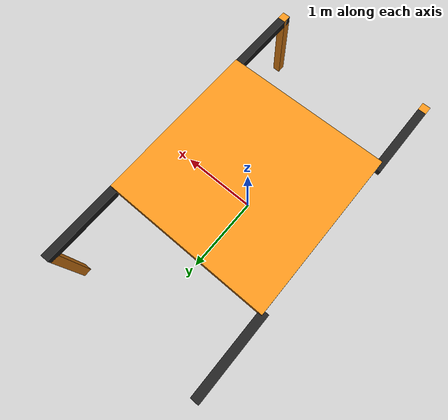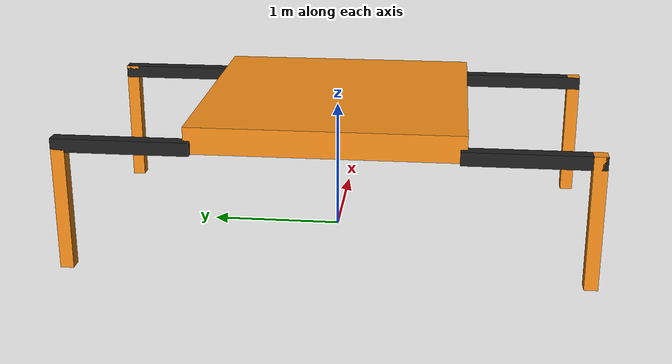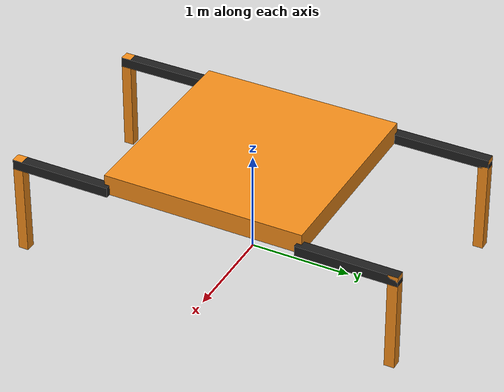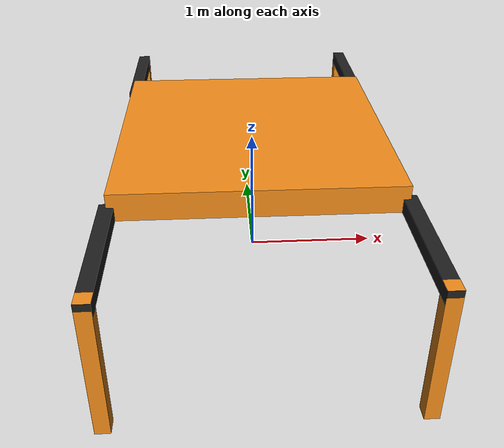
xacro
<?xml version="1.0"?>
<!-- Revolute-Revolute Manipulator -->
<robot name="one_leg" xmlns:xacro="http://www.ros.org/wiki/xacro">

  <!-- Constants for robot dimensions -->
  <xacro:property name="PI" value="3.1415926535897931"/>
  <xacro:property name="mass" value="1" /> <!-- arbitrary value for mass -->
  <xacro:property name="width" value="0.1" /> <!-- Square dimensions (widthxwidth) of beams -->
   <xacro:property name="width_body" value="2" />
    <xacro:property name="height_body" value="0.2" />
  <xacro:property name="height1" value="1" /> <!-- Link 1 -->
  <xacro:property name="height2" value="1" /> <!-- Link 2 -->
  <xacro:property name="height3" value="1" /> <!-- Link 3 -->
  <xacro:property name="axel_offset" value="0.05" /> <!-- Space btw top of beam and the each joint -->
  <xacro:property name="leg_offset" value="1" /> <!-- Offset of leg from body -->
  <!-- Import all Gazebo-customization elements, including Gazebo colors -->
  <xacro:include filename="$(find creepy_crawler)/models/creepy_crawler_bot/creepy_crawler.gazebo" />
  <!-- Import Rviz colors -->
  <xacro:include filename="$(find creepy_crawler)/models/creepy_crawler_bot/materials.xacro" />
  <!-- Base Link -->
  <link name="world">
    <origin xyz="0 0 ${height1}" rpy="0 0 0"/>
  </link>
  <joint name="world2body" type="fixed">
    <parent link="world"/>
    <child link="body"/>
  </joint>
  <link name="body">
    <collision>
      <origin xyz="0 0 ${height1}" rpy="0 0 0"/>
      <geometry>
	<box size="${width_body} ${width_body} ${height_body}"/>
      </geometry>
    </collision>

    <visual>
      <origin xyz="0 0 ${height1}" rpy="0 0 0"/>
      <geometry>
	<box size="${width_body} ${width_body} ${height_body}"/>
      </geometry>
      <material name="orange"/>
    </visual>

    <inertial>
      <origin xyz="0 0 ${height1}" rpy="0 0 0"/>
      <mass value="${mass}"/>
      <inertia
	  ixx="${mass / 12.0 * (width_body*width_body + height_body*height_body)}" ixy="0.0" ixz="0.0"
	  iyy="${mass / 12.0 * (height_body*height_body + width_body*width_body)}" iyz="0.0"
	  izz="${mass / 12.0 * (width_body*width_body + width_body*width_body)}"/>
    </inertial>
  </link>
  <!-- Leg 1 structure -->
  <joint name="joint1" type="continuous">
    <parent link="body"/>
    <child link="link2"/>
    <origin xyz="${leg_offset} ${leg_offset} ${height1 - axel_offset}" rpy="0 0 0"/>
    <axis xyz="0 0 1"/>
    <dynamics damping="0.7"/>
  </joint>

  <!-- Middle Link -->
  <link name="link2">
    <collision>
      <origin xyz="0 ${height2/2 - axel_offset} 0" rpy="-1.57 0 0"/>
      <geometry>
	<box size="${width} ${width} ${height2}"/>
      </geometry>
    </collision>

    <visual>
      <origin xyz="0 ${height2/2 - axel_offset} 0" rpy="-1.57 0 0"/>
      <geometry>
	<box size="${width} ${width} ${height2}"/>
      </geometry>
      <material name="black"/>
    </visual>

    <inertial>
      <origin xyz="0 ${height2/2 - axel_offset} 0" rpy="-1.57 0 0"/>
      <mass value="${mass}"/>
      <inertia
	  ixx="${mass / 12.0 * (width*width + height2*height2)}" ixy="0.0" ixz="0.0"
	  iyy="${mass / 12.0 * (height2*height2 + width*width)}" iyz="0.0"
	  izz="${mass / 12.0 * (width*width + width*width)}"/>
    </inertial>
  </link>

  <joint name="joint2" type="continuous">
    <parent link="link2"/>
    <child link="link3"/>
    <origin xyz="0 ${height2 - axel_offset*2} 0" rpy="0 0 0"/>
    <axis xyz="0 1 0"/>
    <dynamics damping="0.7"/>
  </joint>

  <!-- Top Link -->
  <link name="link3">
    <collision>
      <origin xyz="0 0 -${height3/2 - axel_offset}" rpy="0 0 0"/>
      <geometry>
	<box size="${width} ${width} ${height3}"/>
      </geometry>
    </collision>

    <visual>
      <origin xyz="0 0 -${height3/2 - axel_offset}" rpy="0 0 0"/>
      <geometry>
	<box size="${width} ${width} ${height3}"/>
      </geometry>
      <material name="orange"/>
    </visual>

    <inertial>
      <origin xyz="0 0 -${height3/2 - axel_offset}" rpy="0 0 0"/>
      <mass value="${mass}"/>
      <inertia
	  ixx="${mass / 12.0 * (width*width + height3*height3)}" ixy="0.0" ixz="0.0"
	  iyy="${mass / 12.0 * (height3*height3 + width*width)}" iyz="0.0"
	  izz="${mass / 12.0 * (width*width + width*width)}"/>
    </inertial>
  </link>

<!-- Leg 2 Structure -->
  <joint name="joint1_2" type="continuous">
    <parent link="body"/>
    <child link="link2_2"/>
    <origin xyz="-${leg_offset} ${leg_offset} ${height1 - axel_offset}" rpy="0 0 0"/>
    <axis xyz="0 0 1"/>
    <dynamics damping="0.7"/>
  </joint>

  <!-- Middle Link -->
  <link name="link2_2">
    <collision>
      <origin xyz="0 ${height2/2 - axel_offset} 0" rpy="-1.57 0 0"/>
      <geometry>
	<box size="${width} ${width} ${height2}"/>
      </geometry>
    </collision>

    <visual>
      <origin xyz="0 ${height2/2 - axel_offset} 0" rpy="-1.57 0 0"/>
      <geometry>
	<box size="${width} ${width} ${height2}"/>
      </geometry>
      <material name="black"/>
    </visual>

    <inertial>
      <origin xyz="0 ${height2/2 - axel_offset} 0" rpy="-1.57 0 0"/>
      <mass value="${mass}"/>
      <inertia
	  ixx="${mass / 12.0 * (width*width + height2*height2)}" ixy="0.0" ixz="0.0"
	  iyy="${mass / 12.0 * (height2*height2 + width*width)}" iyz="0.0"
	  izz="${mass / 12.0 * (width*width + width*width)}"/>
    </inertial>
  </link>

  <joint name="joint2_2" type="continuous">
    <parent link="link2_2"/>
    <child link="link3_2"/>
    <origin xyz="0 ${height2 - axel_offset*2} 0" rpy="0 0 0"/>
    <axis xyz="0 1 0"/>
    <dynamics damping="0.7"/>
  </joint>

  <!-- Top Link -->
  <link name="link3_2">
    <collision>
      <origin xyz="0 0 -${height3/2 - axel_offset}" rpy="0 0 0"/>
      <geometry>
	<box size="${width} ${width} ${height3}"/>
      </geometry>
    </collision>

    <visual>
      <origin xyz="0 0 -${height3/2 - axel_offset}" rpy="0 0 0"/>
      <geometry>
	<box size="${width} ${width} ${height3}"/>
      </geometry>
      <material name="orange"/>
    </visual>

    <inertial>
      <origin xyz="0 0 -${height3/2 - axel_offset}" rpy="0 0 0"/>
      <mass value="${mass}"/>
      <inertia
	  ixx="${mass / 12.0 * (width*width + height3*height3)}" ixy="0.0" ixz="0.0"
	  iyy="${mass / 12.0 * (height3*height3 + width*width)}" iyz="0.0"
	  izz="${mass / 12.0 * (width*width + width*width)}"/>
    </inertial>
  </link>

  <!-- Leg 3 Structure -->
  <joint name="joint1_3" type="continuous">
    <parent link="body"/>
    <child link="link2_3"/>
    <origin xyz="-${leg_offset} -${leg_offset} ${height1 - axel_offset}" rpy="0 0 0"/>
    <axis xyz="0 0 1"/>
    <dynamics damping="0.7"/>
  </joint>

  <!-- Middle Link -->
  <link name="link2_3">
    <collision>
      <origin xyz="0 -${height2/2 - axel_offset} 0" rpy="-1.57 0 0"/>
      <geometry>
	<box size="${width} ${width} ${height2}"/>
      </geometry>
    </collision>

    <visual>
      <origin xyz="0 -${height2/2 - axel_offset} 0" rpy="-1.57 0 0"/>
      <geometry>
	<box size="${width} ${width} ${height2}"/>
      </geometry>
      <material name="black"/>
    </visual>

    <inertial>
      <origin xyz="0 ${height2/2 - axel_offset} 0" rpy="-1.57 0 0"/>
      <mass value="${mass}"/>
      <inertia
	  ixx="${mass / 12.0 * (width*width + height2*height2)}" ixy="0.0" ixz="0.0"
	  iyy="${mass / 12.0 * (height2*height2 + width*width)}" iyz="0.0"
	  izz="${mass / 12.0 * (width*width + width*width)}"/>
    </inertial>
  </link>

  <joint name="joint2_3" type="continuous">
    <parent link="link2_3"/>
    <child link="link3_3"/>
    <origin xyz="0 -${height2 - axel_offset*2} 0" rpy="0 0 0"/>
    <axis xyz="0 1 0"/>
    <dynamics damping="0.7"/>
  </joint>

  <!-- Top Link -->
  <link name="link3_3">
    <collision>
      <origin xyz="0 0 -${height3/2 - axel_offset}" rpy="0 0 0"/>
      <geometry>
	<box size="${width} ${width} ${height3}"/>
      </geometry>
    </collision>

    <visual>
      <origin xyz="0 0 -${height3/2 - axel_offset}" rpy="0 0 0"/>
      <geometry>
	<box size="${width} ${width} ${height3}"/>
      </geometry>
      <material name="orange"/>
    </visual>

    <inertial>
      <origin xyz="0 0 -${height3/2 - axel_offset}" rpy="0 0 0"/>
      <mass value="${mass}"/>
      <inertia
	  ixx="${mass / 12.0 * (width*width + height3*height3)}" ixy="0.0" ixz="0.0"
	  iyy="${mass / 12.0 * (height3*height3 + width*width)}" iyz="0.0"
	  izz="${mass / 12.0 * (width*width + width*width)}"/>
    </inertial>
  </link>

  <!-- Leg 4 Structure -->
  <joint name="joint1_4" type="continuous">
    <parent link="body"/>
    <child link="link2_4"/>
    <origin xyz="${leg_offset} -${leg_offset} ${height1 - axel_offset}" rpy="0 0 0"/>
    <axis xyz="0 0 1"/>
    <dynamics damping="0.7"/>
  </joint>

  <!-- Middle Link -->
  <link name="link2_4">
    <collision>
      <origin xyz="0 -${height2/2 - axel_offset} 0" rpy="-1.57 0 0"/>
      <geometry>
	<box size="${width} ${width} ${height2}"/>
      </geometry>
    </collision>

    <visual>
      <origin xyz="0 -${height2/2 - axel_offset} 0" rpy="-1.57 0 0"/>
      <geometry>
	<box size="${width} ${width} ${height2}"/>
      </geometry>
      <material name="black"/>
    </visual>

    <inertial>
      <origin xyz="0 ${height2/2 - axel_offset} 0" rpy="-1.57 0 0"/>
      <mass value="${mass}"/>
      <inertia
	  ixx="${mass / 12.0 * (width*width + height2*height2)}" ixy="0.0" ixz="0.0"
	  iyy="${mass / 12.0 * (height2*height2 + width*width)}" iyz="0.0"
	  izz="${mass / 12.0 * (width*width + width*width)}"/>
    </inertial>
  </link>

  <joint name="joint2_4" type="continuous">
    <parent link="link2_4"/>
    <child link="link3_4"/>
    <origin xyz="0 -${height2 - axel_offset*2} 0" rpy="0 0 0"/>
    <axis xyz="0 1 0"/>
    <dynamics damping="0.7"/>
  </joint>

  <!-- Top Link -->
  <link name="link3_4">
    <collision>
      <origin xyz="0 0 -${height3/2 - axel_offset}" rpy="0 0 0"/>
      <geometry>
	<box size="${width} ${width} ${height3}"/>
      </geometry>
    </collision>

    <visual>
      <origin xyz="0 0 -${height3/2 - axel_offset}" rpy="0 0 0"/>
      <geometry>
	<box size="${width} ${width} ${height3}"/>
      </geometry>
      <material name="orange"/>
    </visual>

    <inertial>
      <origin xyz="0 0 -${height3/2 - axel_offset}" rpy="0 0 0"/>
      <mass value="${mass}"/>
      <inertia
	  ixx="${mass / 12.0 * (width*width + height3*height3)}" ixy="0.0" ixz="0.0"
	  iyy="${mass / 12.0 * (height3*height3 + width*width)}" iyz="0.0"
	  izz="${mass / 12.0 * (width*width + width*width)}"/>
    </inertial>
  </link>

  <transmission name="tran1">
    <type>transmission_interface/SimpleTransmission</type>
    <joint name="joint1">
      <hardwareInterface>hardware_interface/EffortJointInterface</hardwareInterface>
    </joint>
    <actuator name="motor1">
      <hardwareInterface>hardware_interface/EffortJointInterface</hardwareInterface>
      <mechanicalReduction>1</mechanicalReduction>
    </actuator>
  </transmission>

  <transmission name="tran2">
    <type>transmission_interface/SimpleTransmission</type>
    <joint name="joint2">
      <hardwareInterface>hardware_interface/EffortJointInterface</hardwareInterface>
    </joint>
    <actuator name="motor2">
      <hardwareInterface>hardware_interface/EffortJointInterface</hardwareInterface>
      <mechanicalReduction>1</mechanicalReduction>
    </actuator>
  </transmission>

  <transmission name="tran1_2">
    <type>transmission_interface/SimpleTransmission</type>
    <joint name="joint1_2">
      <hardwareInterface>hardware_interface/EffortJointInterface</hardwareInterface>
    </joint>
    <actuator name="motor1_2">
      <hardwareInterface>hardware_interface/EffortJointInterface</hardwareInterface>
      <mechanicalReduction>1</mechanicalReduction>
    </actuator>
  </transmission>

  <transmission name="tran2_2">
    <type>transmission_interface/SimpleTransmission</type>
    <joint name="joint2_2">
      <hardwareInterface>hardware_interface/EffortJointInterface</hardwareInterface>
    </joint>
    <actuator name="motor2_2">
      <hardwareInterface>hardware_interface/EffortJointInterface</hardwareInterface>
      <mechanicalReduction>1</mechanicalReduction>
    </actuator>
  </transmission>

  <transmission name="tran1_3">
    <type>transmission_interface/SimpleTransmission</type>
    <joint name="joint1_3">
      <hardwareInterface>hardware_interface/EffortJointInterface</hardwareInterface>
    </joint>
    <actuator name="motor1_3">
      <hardwareInterface>hardware_interface/EffortJointInterface</hardwareInterface>
      <mechanicalReduction>1</mechanicalReduction>
    </actuator>
  </transmission>

  <transmission name="tran2_3">
    <type>transmission_interface/SimpleTransmission</type>
    <joint name="joint2_3">
      <hardwareInterface>hardware_interface/EffortJointInterface</hardwareInterface>
    </joint>
    <actuator name="motor2_3">
      <hardwareInterface>hardware_interface/EffortJointInterface</hardwareInterface>
      <mechanicalReduction>1</mechanicalReduction>
    </actuator>
  </transmission>

  <transmission name="tran1_4">
    <type>transmission_interface/SimpleTransmission</type>
    <joint name="joint1_4">
      <hardwareInterface>hardware_interface/EffortJointInterface</hardwareInterface>
    </joint>
    <actuator name="motor1_4">
      <hardwareInterface>hardware_interface/EffortJointInterface</hardwareInterface>
      <mechanicalReduction>1</mechanicalReduction>
    </actuator>
  </transmission>

  <transmission name="tran2_4">
    <type>transmission_interface/SimpleTransmission</type>
    <joint name="joint2_4">
      <hardwareInterface>hardware_interface/EffortJointInterface</hardwareInterface>
    </joint>
    <actuator name="motor2_4">
      <hardwareInterface>hardware_interface/EffortJointInterface</hardwareInterface>
      <mechanicalReduction>1</mechanicalReduction>
    </actuator>
  </transmission>
</robot>
